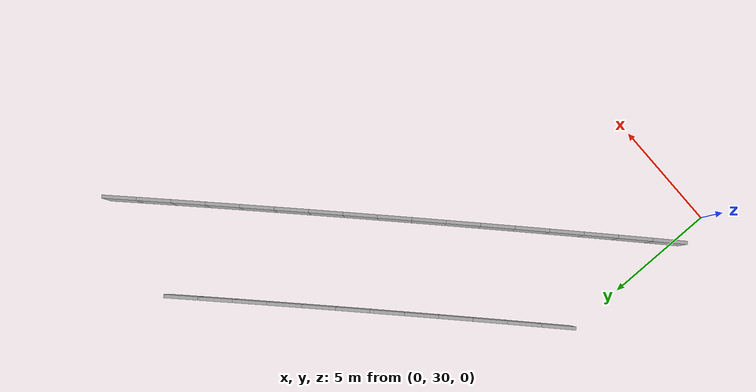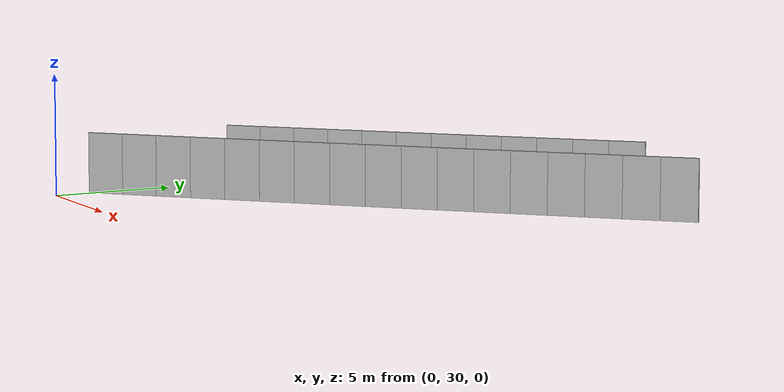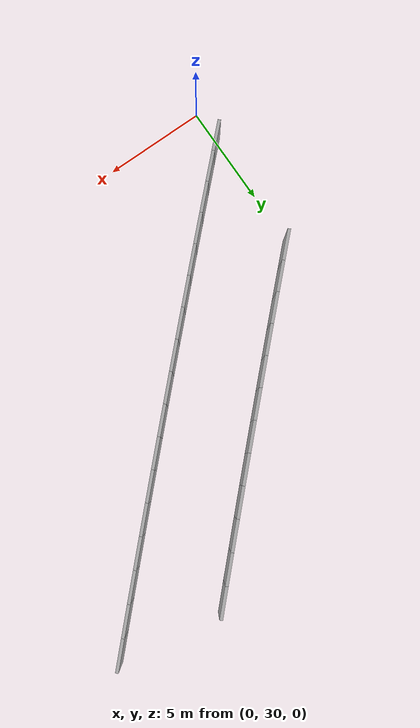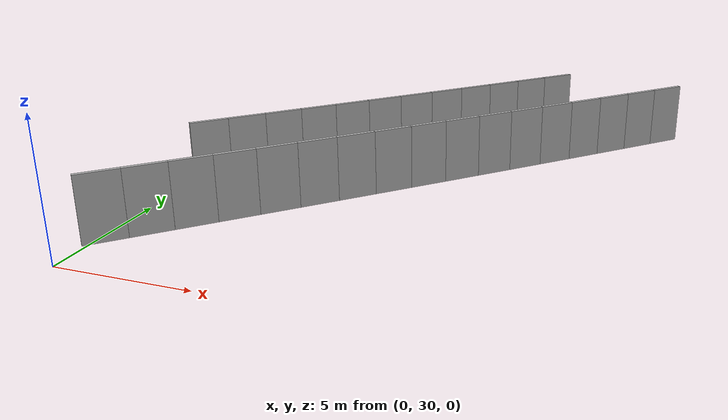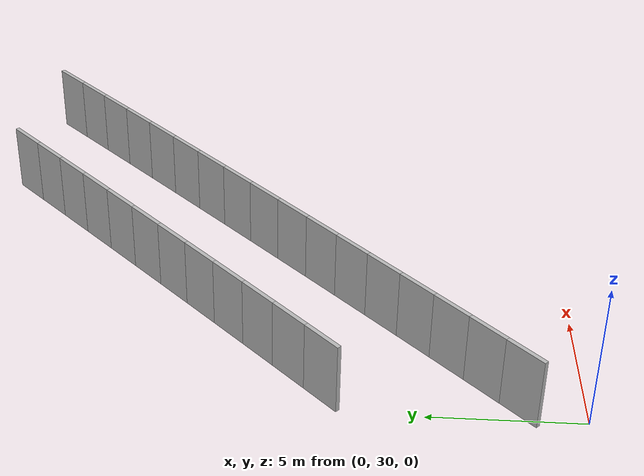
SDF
<?xml version="1.0" ?>
<sdf version="1.6">
  <model name="sps_3908">
    <pose frame="">0 0 0 0 -0 0</pose>
    <static>1</static>
    <self_collide>0</self_collide>
    <allow_auto_disable>0</allow_auto_disable>
    <link name="Wall4153">
      <kinematic>0</kinematic>
      <gravity>1</gravity>
      <self_collide>0</self_collide>
      <collision name="collision">
        <geometry>
          <box>
            <size>1.49631 0.15 2.5</size>
          </box>
        </geometry>
        <pose frame="">0 0 0 0 -0 0</pose>
      </collision>
      <visual name="visual">
        <geometry>
          <box>
            <size>1.49631 0.15 2.5</size>
          </box>
        </geometry>
        <pose frame="">0 0 0 0 -0 0</pose>
        <cast_shadows>1</cast_shadows>
        <transparency>0.0</transparency>
      </visual>
      <pose frame="">0.649833 38.1975 1.25 0 -0 0.774034</pose>
    </link>
    <link name="Wall4154">
      <kinematic>0</kinematic>
      <gravity>1</gravity>
      <self_collide>0</self_collide>
      <collision name="collision">
        <geometry>
          <box>
            <size>1.49659 0.15 2.5</size>
          </box>
        </geometry>
        <pose frame="">0 0 0 0 -0 0</pose>
      </collision>
      <visual name="visual">
        <geometry>
          <box>
            <size>1.49659 0.15 2.5</size>
          </box>
        </geometry>
        <pose frame="">0 0 0 0 -0 0</pose>
        <cast_shadows>1</cast_shadows>
        <transparency>0.0</transparency>
      </visual>
      <pose frame="">1.71914 39.2444 1.25 0 -0 0.775564</pose>
    </link>
    <link name="Wall4155">
      <kinematic>0</kinematic>
      <gravity>1</gravity>
      <self_collide>0</self_collide>
      <collision name="collision">
        <geometry>
          <box>
            <size>1.49656 0.15 2.5</size>
          </box>
        </geometry>
        <pose frame="">0 0 0 0 -0 0</pose>
      </collision>
      <visual name="visual">
        <geometry>
          <box>
            <size>1.49656 0.15 2.5</size>
          </box>
        </geometry>
        <pose frame="">0 0 0 0 -0 0</pose>
        <cast_shadows>1</cast_shadows>
        <transparency>0.0</transparency>
      </visual>
      <pose frame="">2.78673 40.2932 1.25 0 -0 0.777468</pose>
    </link>
    <link name="Wall4156">
      <kinematic>0</kinematic>
      <gravity>1</gravity>
      <self_collide>0</self_collide>
      <collision name="collision">
        <geometry>
          <box>
            <size>1.49659 0.15 2.5</size>
          </box>
        </geometry>
        <pose frame="">0 0 0 0 -0 0</pose>
      </collision>
      <visual name="visual">
        <geometry>
          <box>
            <size>1.49659 0.15 2.5</size>
          </box>
        </geometry>
        <pose frame="">0 0 0 0 -0 0</pose>
        <cast_shadows>1</cast_shadows>
        <transparency>0.0</transparency>
      </visual>
      <pose frame="">3.85265 41.3437 1.25 0 -0 0.778765</pose>
    </link>
    <link name="Wall4157">
      <kinematic>0</kinematic>
      <gravity>1</gravity>
      <self_collide>0</self_collide>
      <collision name="collision">
        <geometry>
          <box>
            <size>1.49653 0.15 2.5</size>
          </box>
        </geometry>
        <pose frame="">0 0 0 0 -0 0</pose>
      </collision>
      <visual name="visual">
        <geometry>
          <box>
            <size>1.49653 0.15 2.5</size>
          </box>
        </geometry>
        <pose frame="">0 0 0 0 -0 0</pose>
        <cast_shadows>1</cast_shadows>
        <transparency>0.0</transparency>
      </visual>
      <pose frame="">4.91695 42.3958 1.25 0 -0 0.780524</pose>
    </link>
    <link name="Wall4158">
      <kinematic>0</kinematic>
      <gravity>1</gravity>
      <self_collide>0</self_collide>
      <collision name="collision">
        <geometry>
          <box>
            <size>1.49653 0.15 2.5</size>
          </box>
        </geometry>
        <pose frame="">0 0 0 0 -0 0</pose>
      </collision>
      <visual name="visual">
        <geometry>
          <box>
            <size>1.49653 0.15 2.5</size>
          </box>
        </geometry>
        <pose frame="">0 0 0 0 -0 0</pose>
        <cast_shadows>1</cast_shadows>
        <transparency>0.0</transparency>
      </visual>
      <pose frame="">5.97954 43.4496 1.25 0 -0 0.781966</pose>
    </link>
    <link name="Wall4159">
      <kinematic>0</kinematic>
      <gravity>1</gravity>
      <self_collide>0</self_collide>
      <collision name="collision">
        <geometry>
          <box>
            <size>1.49652 0.15 2.5</size>
          </box>
        </geometry>
        <pose frame="">0 0 0 0 -0 0</pose>
      </collision>
      <visual name="visual">
        <geometry>
          <box>
            <size>1.49652 0.15 2.5</size>
          </box>
        </geometry>
        <pose frame="">0 0 0 0 -0 0</pose>
        <cast_shadows>1</cast_shadows>
        <transparency>0.0</transparency>
      </visual>
      <pose frame="">7.04055 44.505 1.25 0 -0 0.783524</pose>
    </link>
    <link name="Wall4160">
      <kinematic>0</kinematic>
      <gravity>1</gravity>
      <self_collide>0</self_collide>
      <collision name="collision">
        <geometry>
          <box>
            <size>1.49665 0.15 2.5</size>
          </box>
        </geometry>
        <pose frame="">0 0 0 0 -0 0</pose>
      </collision>
      <visual name="visual">
        <geometry>
          <box>
            <size>1.49665 0.15 2.5</size>
          </box>
        </geometry>
        <pose frame="">0 0 0 0 -0 0</pose>
        <cast_shadows>1</cast_shadows>
        <transparency>0.0</transparency>
      </visual>
      <pose frame="">8.09994 45.5621 1.25 0 -0 0.78511</pose>
    </link>
    <link name="Wall4161">
      <kinematic>0</kinematic>
      <gravity>1</gravity>
      <self_collide>0</self_collide>
      <collision name="collision">
        <geometry>
          <box>
            <size>1.49643 0.15 2.5</size>
          </box>
        </geometry>
        <pose frame="">0 0 0 0 -0 0</pose>
      </collision>
      <visual name="visual">
        <geometry>
          <box>
            <size>1.49643 0.15 2.5</size>
          </box>
        </geometry>
        <pose frame="">0 0 0 0 -0 0</pose>
        <cast_shadows>1</cast_shadows>
        <transparency>0.0</transparency>
      </visual>
      <pose frame="">9.15755 46.6209 1.25 0 -0 0.786811</pose>
    </link>
    <link name="Wall4162">
      <kinematic>0</kinematic>
      <gravity>1</gravity>
      <self_collide>0</self_collide>
      <collision name="collision">
        <geometry>
          <box>
            <size>1.49652 0.15 2.5</size>
          </box>
        </geometry>
        <pose frame="">0 0 0 0 -0 0</pose>
      </collision>
      <visual name="visual">
        <geometry>
          <box>
            <size>1.49652 0.15 2.5</size>
          </box>
        </geometry>
        <pose frame="">0 0 0 0 -0 0</pose>
        <cast_shadows>1</cast_shadows>
        <transparency>0.0</transparency>
      </visual>
      <pose frame="">10.2134 47.6814 1.25 0 -0 0.788426</pose>
    </link>
    <link name="Wall4163">
      <kinematic>0</kinematic>
      <gravity>1</gravity>
      <self_collide>0</self_collide>
      <collision name="collision">
        <geometry>
          <box>
            <size>1.49653 0.15 2.5</size>
          </box>
        </geometry>
        <pose frame="">0 0 0 0 -0 0</pose>
      </collision>
      <visual name="visual">
        <geometry>
          <box>
            <size>1.49653 0.15 2.5</size>
          </box>
        </geometry>
        <pose frame="">0 0 0 0 -0 0</pose>
        <cast_shadows>1</cast_shadows>
        <transparency>0.0</transparency>
      </visual>
      <pose frame="">11.2676 48.7436 1.25 0 -0 0.789926</pose>
    </link>
    <link name="Wall4164">
      <kinematic>0</kinematic>
      <gravity>1</gravity>
      <self_collide>0</self_collide>
      <collision name="collision">
        <geometry>
          <box>
            <size>1.4965 0.15 2.5</size>
          </box>
        </geometry>
        <pose frame="">0 0 0 0 -0 0</pose>
      </collision>
      <visual name="visual">
        <geometry>
          <box>
            <size>1.4965 0.15 2.5</size>
          </box>
        </geometry>
        <pose frame="">0 0 0 0 -0 0</pose>
        <cast_shadows>1</cast_shadows>
        <transparency>0.0</transparency>
      </visual>
      <pose frame="">12.3202 49.8074 1.25 0 -0 0.791455</pose>
    </link>
    <link name="Wall7925">
      <kinematic>0</kinematic>
      <gravity>1</gravity>
      <self_collide>0</self_collide>
      <collision name="collision">
        <geometry>
          <box>
            <size>1.50306 0.15 2.5</size>
          </box>
        </geometry>
        <pose frame="">0 0 0 0 -0 0</pose>
      </collision>
      <visual name="visual">
        <geometry>
          <box>
            <size>1.50306 0.15 2.5</size>
          </box>
        </geometry>
        <pose frame="">0 0 0 0 -0 0</pose>
        <cast_shadows>1</cast_shadows>
        <transparency>0.0</transparency>
      </visual>
      <pose frame="">0.313163 32.0929 1.25 0 -0 0.769318</pose>
    </link>
    <link name="Wall7926">
      <kinematic>0</kinematic>
      <gravity>1</gravity>
      <self_collide>0</self_collide>
      <collision name="collision">
        <geometry>
          <box>
            <size>1.50319 0.15 2.5</size>
          </box>
        </geometry>
        <pose frame="">0 0 0 0 -0 0</pose>
      </collision>
      <visual name="visual">
        <geometry>
          <box>
            <size>1.50319 0.15 2.5</size>
          </box>
        </geometry>
        <pose frame="">0 0 0 0 -0 0</pose>
        <cast_shadows>1</cast_shadows>
        <transparency>0.0</transparency>
      </visual>
      <pose frame="">1.39214 33.1394 1.25 0 -0 0.770927</pose>
    </link>
    <link name="Wall7927">
      <kinematic>0</kinematic>
      <gravity>1</gravity>
      <self_collide>0</self_collide>
      <collision name="collision">
        <geometry>
          <box>
            <size>1.50303 0.15 2.5</size>
          </box>
        </geometry>
        <pose frame="">0 0 0 0 -0 0</pose>
      </collision>
      <visual name="visual">
        <geometry>
          <box>
            <size>1.50303 0.15 2.5</size>
          </box>
        </geometry>
        <pose frame="">0 0 0 0 -0 0</pose>
        <cast_shadows>1</cast_shadows>
        <transparency>0.0</transparency>
      </visual>
      <pose frame="">2.46944 34.1876 1.25 0 -0 0.772505</pose>
    </link>
    <link name="Wall7928">
      <kinematic>0</kinematic>
      <gravity>1</gravity>
      <self_collide>0</self_collide>
      <collision name="collision">
        <geometry>
          <box>
            <size>1.50313 0.15 2.5</size>
          </box>
        </geometry>
        <pose frame="">0 0 0 0 -0 0</pose>
      </collision>
      <visual name="visual">
        <geometry>
          <box>
            <size>1.50313 0.15 2.5</size>
          </box>
        </geometry>
        <pose frame="">0 0 0 0 -0 0</pose>
        <cast_shadows>1</cast_shadows>
        <transparency>0.0</transparency>
      </visual>
      <pose frame="">3.54507 35.2375 1.25 0 -0 0.774085</pose>
    </link>
    <link name="Wall7929">
      <kinematic>0</kinematic>
      <gravity>1</gravity>
      <self_collide>0</self_collide>
      <collision name="collision">
        <geometry>
          <box>
            <size>1.50297 0.15 2.5</size>
          </box>
        </geometry>
        <pose frame="">0 0 0 0 -0 0</pose>
      </collision>
      <visual name="visual">
        <geometry>
          <box>
            <size>1.50297 0.15 2.5</size>
          </box>
        </geometry>
        <pose frame="">0 0 0 0 -0 0</pose>
        <cast_shadows>1</cast_shadows>
        <transparency>0.0</transparency>
      </visual>
      <pose frame="">4.61898 36.2891 1.25 0 -0 0.775721</pose>
    </link>
    <link name="Wall7930">
      <kinematic>0</kinematic>
      <gravity>1</gravity>
      <self_collide>0</self_collide>
      <collision name="collision">
        <geometry>
          <box>
            <size>1.50321 0.15 2.5</size>
          </box>
        </geometry>
        <pose frame="">0 0 0 0 -0 0</pose>
      </collision>
      <visual name="visual">
        <geometry>
          <box>
            <size>1.50321 0.15 2.5</size>
          </box>
        </geometry>
        <pose frame="">0 0 0 0 -0 0</pose>
        <cast_shadows>1</cast_shadows>
        <transparency>0.0</transparency>
      </visual>
      <pose frame="">5.69128 37.3424 1.25 0 -0 0.777216</pose>
    </link>
    <link name="Wall7931">
      <kinematic>0</kinematic>
      <gravity>1</gravity>
      <self_collide>0</self_collide>
      <collision name="collision">
        <geometry>
          <box>
            <size>1.50302 0.15 2.5</size>
          </box>
        </geometry>
        <pose frame="">0 0 0 0 -0 0</pose>
      </collision>
      <visual name="visual">
        <geometry>
          <box>
            <size>1.50302 0.15 2.5</size>
          </box>
        </geometry>
        <pose frame="">0 0 0 0 -0 0</pose>
        <cast_shadows>1</cast_shadows>
        <transparency>0.0</transparency>
      </visual>
      <pose frame="">6.76195 38.3974 1.25 0 -0 0.778823</pose>
    </link>
    <link name="Wall7932">
      <kinematic>0</kinematic>
      <gravity>1</gravity>
      <self_collide>0</self_collide>
      <collision name="collision">
        <geometry>
          <box>
            <size>1.50318 0.15 2.5</size>
          </box>
        </geometry>
        <pose frame="">0 0 0 0 -0 0</pose>
      </collision>
      <visual name="visual">
        <geometry>
          <box>
            <size>1.50318 0.15 2.5</size>
          </box>
        </geometry>
        <pose frame="">0 0 0 0 -0 0</pose>
        <cast_shadows>1</cast_shadows>
        <transparency>0.0</transparency>
      </visual>
      <pose frame="">7.83095 39.4541 1.25 0 -0 0.780374</pose>
    </link>
    <link name="Wall7933">
      <kinematic>0</kinematic>
      <gravity>1</gravity>
      <self_collide>0</self_collide>
      <collision name="collision">
        <geometry>
          <box>
            <size>1.50304 0.15 2.5</size>
          </box>
        </geometry>
        <pose frame="">0 0 0 0 -0 0</pose>
      </collision>
      <visual name="visual">
        <geometry>
          <box>
            <size>1.50304 0.15 2.5</size>
          </box>
        </geometry>
        <pose frame="">0 0 0 0 -0 0</pose>
        <cast_shadows>1</cast_shadows>
        <transparency>0.0</transparency>
      </visual>
      <pose frame="">8.89828 40.5125 1.25 0 -0 0.78201</pose>
    </link>
    <link name="Wall7934">
      <kinematic>0</kinematic>
      <gravity>1</gravity>
      <self_collide>0</self_collide>
      <collision name="collision">
        <geometry>
          <box>
            <size>1.50304 0.15 2.5</size>
          </box>
        </geometry>
        <pose frame="">0 0 0 0 -0 0</pose>
      </collision>
      <visual name="visual">
        <geometry>
          <box>
            <size>1.50304 0.15 2.5</size>
          </box>
        </geometry>
        <pose frame="">0 0 0 0 -0 0</pose>
        <cast_shadows>1</cast_shadows>
        <transparency>0.0</transparency>
      </visual>
      <pose frame="">9.96377 41.5726 1.25 0 -0 0.783733</pose>
    </link>
    <link name="Wall7935">
      <kinematic>0</kinematic>
      <gravity>1</gravity>
      <self_collide>0</self_collide>
      <collision name="collision">
        <geometry>
          <box>
            <size>1.50299 0.15 2.5</size>
          </box>
        </geometry>
        <pose frame="">0 0 0 0 -0 0</pose>
      </collision>
      <visual name="visual">
        <geometry>
          <box>
            <size>1.50299 0.15 2.5</size>
          </box>
        </geometry>
        <pose frame="">0 0 0 0 -0 0</pose>
        <cast_shadows>1</cast_shadows>
        <transparency>0.0</transparency>
      </visual>
      <pose frame="">11.0275 42.6344 1.25 0 -0 0.785197</pose>
    </link>
    <link name="Wall7936">
      <kinematic>0</kinematic>
      <gravity>1</gravity>
      <self_collide>0</self_collide>
      <collision name="collision">
        <geometry>
          <box>
            <size>1.50303 0.15 2.5</size>
          </box>
        </geometry>
        <pose frame="">0 0 0 0 -0 0</pose>
      </collision>
      <visual name="visual">
        <geometry>
          <box>
            <size>1.50303 0.15 2.5</size>
          </box>
        </geometry>
        <pose frame="">0 0 0 0 -0 0</pose>
        <cast_shadows>1</cast_shadows>
        <transparency>0.0</transparency>
      </visual>
      <pose frame="">12.0897 43.6978 1.25 0 -0 0.786719</pose>
    </link>
    <link name="Wall7937">
      <kinematic>0</kinematic>
      <gravity>1</gravity>
      <self_collide>0</self_collide>
      <collision name="collision">
        <geometry>
          <box>
            <size>1.50321 0.15 2.5</size>
          </box>
        </geometry>
        <pose frame="">0 0 0 0 -0 0</pose>
      </collision>
      <visual name="visual">
        <geometry>
          <box>
            <size>1.50321 0.15 2.5</size>
          </box>
        </geometry>
        <pose frame="">0 0 0 0 -0 0</pose>
        <cast_shadows>1</cast_shadows>
        <transparency>0.0</transparency>
      </visual>
      <pose frame="">13.1504 44.7629 1.25 0 -0 0.788327</pose>
    </link>
    <link name="Wall7938">
      <kinematic>0</kinematic>
      <gravity>1</gravity>
      <self_collide>0</self_collide>
      <collision name="collision">
        <geometry>
          <box>
            <size>1.50318 0.15 2.5</size>
          </box>
        </geometry>
        <pose frame="">0 0 0 0 -0 0</pose>
      </collision>
      <visual name="visual">
        <geometry>
          <box>
            <size>1.50318 0.15 2.5</size>
          </box>
        </geometry>
        <pose frame="">0 0 0 0 -0 0</pose>
        <cast_shadows>1</cast_shadows>
        <transparency>0.0</transparency>
      </visual>
      <pose frame="">14.2093 45.8298 1.25 0 -0 0.790021</pose>
    </link>
    <link name="Wall7939">
      <kinematic>0</kinematic>
      <gravity>1</gravity>
      <self_collide>0</self_collide>
      <collision name="collision">
        <geometry>
          <box>
            <size>1.50289 0.15 2.5</size>
          </box>
        </geometry>
        <pose frame="">0 0 0 0 -0 0</pose>
      </collision>
      <visual name="visual">
        <geometry>
          <box>
            <size>1.50289 0.15 2.5</size>
          </box>
        </geometry>
        <pose frame="">0 0 0 0 -0 0</pose>
        <cast_shadows>1</cast_shadows>
        <transparency>0.0</transparency>
      </visual>
      <pose frame="">15.2663 46.8983 1.25 0 -0 0.791486</pose>
    </link>
    <link name="Wall7940">
      <kinematic>0</kinematic>
      <gravity>1</gravity>
      <self_collide>0</self_collide>
      <collision name="collision">
        <geometry>
          <box>
            <size>1.50312 0.15 2.5</size>
          </box>
        </geometry>
        <pose frame="">0 0 0 0 -0 0</pose>
      </collision>
      <visual name="visual">
        <geometry>
          <box>
            <size>1.50312 0.15 2.5</size>
          </box>
        </geometry>
        <pose frame="">0 0 0 0 -0 0</pose>
        <cast_shadows>1</cast_shadows>
        <transparency>0.0</transparency>
      </visual>
      <pose frame="">16.3218 47.9684 1.25 0 -0 0.793122</pose>
    </link>
    <link name="Wall7941">
      <kinematic>0</kinematic>
      <gravity>1</gravity>
      <self_collide>0</self_collide>
      <collision name="collision">
        <geometry>
          <box>
            <size>1.50305 0.15 2.5</size>
          </box>
        </geometry>
        <pose frame="">0 0 0 0 -0 0</pose>
      </collision>
      <visual name="visual">
        <geometry>
          <box>
            <size>1.50305 0.15 2.5</size>
          </box>
        </geometry>
        <pose frame="">0 0 0 0 -0 0</pose>
        <cast_shadows>1</cast_shadows>
        <transparency>0.0</transparency>
      </visual>
      <pose frame="">17.3756 49.0402 1.25 0 -0 0.794615</pose>
    </link>
  </model>
</sdf>
